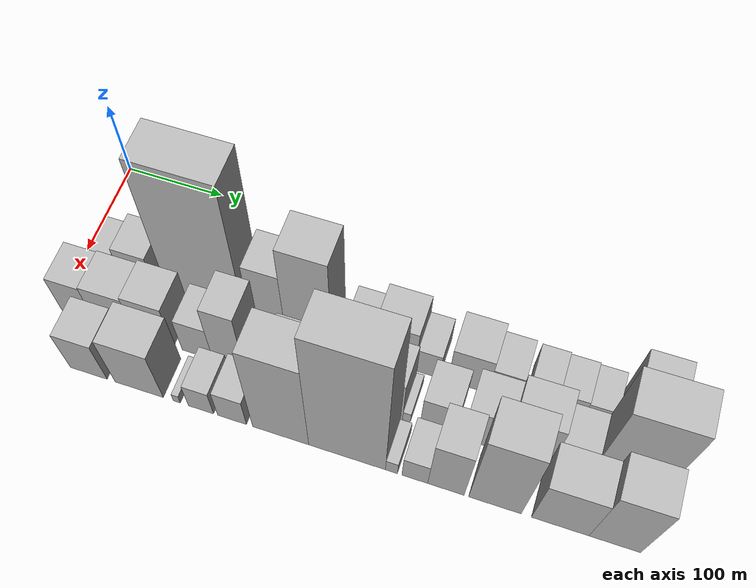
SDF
<sdf version="1.6">
 <world name="default">
  <model name="building_15">
   <static>1</static>
   <pose>100.0000 30.6435 0 0.000000 0.000000 0.000000</pose>
   <link name="link">
    <pose>0 0 21.00 0 0 0</pose>
    <collision name="collision"><geometry><box><size>40.0000 25.0737 42.0000</size></box></geometry></collision>
    <visual name="visual">
     <cast_shadows>0</cast_shadows>
     <geometry><box><size>40.0000 25.0737 42.0000</size></box></geometry>
     <material>
      <script>
       <uri>model://HANNAS_wall/materials/scripts</uri>
       <uri>model://HANNAS_wall/materials/textures</uri>
       <name>vrc/HANNAS_wall</name>
      </script>
     </material>
    </visual>
   </link>
  </model>
  <model name="building_16">
   <static>1</static>
   <pose>100.0000 64.1118 0 0.000000 0.000000 0.000000</pose>
   <link name="link">
    <pose>0 0 30.00 0 0 0</pose>
    <collision name="collision"><geometry><box><size>40.0000 33.8629 60.0000</size></box></geometry></collision>
    <visual name="visual">
     <cast_shadows>0</cast_shadows>
     <geometry><box><size>40.0000 33.8629 60.0000</size></box></geometry>
     <material>
      <script>
       <uri>model://HANNAS_wall/materials/scripts</uri>
       <uri>model://HANNAS_wall/materials/textures</uri>
       <name>vrc/HANNAS_wall</name>
      </script>
     </material>
    </visual>
   </link>
  </model>
  <model name="building_17">
   <static>1</static>
   <pose>100.0000 85.1269 0 0.000000 0.000000 0.000000</pose>
   <link name="link">
    <pose>0 0 9.00 0 0 0</pose>
    <collision name="collision"><geometry><box><size>40.0000 8.1673 18.0000</size></box></geometry></collision>
    <visual name="visual">
     <cast_shadows>0</cast_shadows>
     <geometry><box><size>40.0000 8.1673 18.0000</size></box></geometry>
     <material>
      <script>
       <uri>model://HANNAS_wall/materials/scripts</uri>
       <uri>model://HANNAS_wall/materials/textures</uri>
       <name>vrc/HANNAS_wall</name>
      </script>
     </material>
    </visual>
   </link>
  </model>
  <model name="building_18">
   <static>1</static>
   <pose>100.0000 133.8508 0 0.000000 0.000000 0.000000</pose>
   <link name="link">
    <pose>0 0 111.00 0 0 0</pose>
    <collision name="collision"><geometry><box><size>40.0000 77.2806 222.0000</size></box></geometry></collision>
    <visual name="visual">
     <cast_shadows>0</cast_shadows>
     <geometry><box><size>40.0000 77.2806 222.0000</size></box></geometry>
     <material>
      <script>
       <uri>model://HANNAS_wall/materials/scripts</uri>
       <uri>model://HANNAS_wall/materials/textures</uri>
       <name>vrc/HANNAS_wall</name>
      </script>
     </material>
    </visual>
   </link>
  </model>
  <model name="building_19">
   <static>1</static>
   <pose>100.0000 195.5853 0 0.000000 0.000000 0.000000</pose>
   <link name="link">
    <pose>0 0 51.00 0 0 0</pose>
    <collision name="collision"><geometry><box><size>40.0000 34.1883 102.0000</size></box></geometry></collision>
    <visual name="visual">
     <cast_shadows>0</cast_shadows>
     <geometry><box><size>40.0000 34.1883 102.0000</size></box></geometry>
     <material>
      <script>
       <uri>model://HANNAS_wall/materials/scripts</uri>
       <uri>model://HANNAS_wall/materials/textures</uri>
       <name>vrc/HANNAS_wall</name>
      </script>
     </material>
    </visual>
   </link>
  </model>
  <model name="building_20">
   <static>1</static>
   <pose>100.0000 235.7019 0 0.000000 0.000000 0.000000</pose>
   <link name="link">
    <pose>0 0 75.00 0 0 0</pose>
    <collision name="collision"><geometry><box><size>40.0000 46.0451 150.0000</size></box></geometry></collision>
    <visual name="visual">
     <cast_shadows>0</cast_shadows>
     <geometry><box><size>40.0000 46.0451 150.0000</size></box></geometry>
     <material>
      <script>
       <uri>model://HANNAS_wall/materials/scripts</uri>
       <uri>model://HANNAS_wall/materials/textures</uri>
       <name>vrc/HANNAS_wall</name>
      </script>
     </material>
    </visual>
   </link>
  </model>
  <model name="building_21">
   <static>1</static>
   <pose>100.0000 262.3611 0 0.000000 0.000000 0.000000</pose>
   <link name="link">
    <pose>0 0 9.00 0 0 0</pose>
    <collision name="collision"><geometry><box><size>40.0000 7.2733 18.0000</size></box></geometry></collision>
    <visual name="visual">
     <cast_shadows>0</cast_shadows>
     <geometry><box><size>40.0000 7.2733 18.0000</size></box></geometry>
     <material>
      <script>
       <uri>model://HANNAS_wall/materials/scripts</uri>
       <uri>model://HANNAS_wall/materials/textures</uri>
       <name>vrc/HANNAS_wall</name>
      </script>
     </material>
    </visual>
   </link>
  </model>
  <model name="building_22">
   <static>1</static>
   <pose>100.0000 286.1482 0 0.000000 0.000000 0.000000</pose>
   <link name="link">
    <pose>0 0 27.00 0 0 0</pose>
    <collision name="collision"><geometry><box><size>40.0000 28.3007 54.0000</size></box></geometry></collision>
    <visual name="visual">
     <cast_shadows>0</cast_shadows>
     <geometry><box><size>40.0000 28.3007 54.0000</size></box></geometry>
     <material>
      <script>
       <uri>model://HANNAS_wall/materials/scripts</uri>
       <uri>model://HANNAS_wall/materials/textures</uri>
       <name>vrc/HANNAS_wall</name>
      </script>
     </material>
    </visual>
   </link>
  </model>
  <model name="building_23">
   <static>1</static>
   <pose>100.0000 320.1502 0 0.000000 0.000000 0.000000</pose>
   <link name="link">
    <pose>0 0 37.50 0 0 0</pose>
    <collision name="collision"><geometry><box><size>40.0000 39.7032 75.0000</size></box></geometry></collision>
    <visual name="visual">
     <cast_shadows>0</cast_shadows>
     <geometry><box><size>40.0000 39.7032 75.0000</size></box></geometry>
     <material>
      <script>
       <uri>model://HANNAS_wall/materials/scripts</uri>
       <uri>model://HANNAS_wall/materials/textures</uri>
       <name>vrc/HANNAS_wall</name>
      </script>
     </material>
    </visual>
   </link>
  </model>
  <model name="building_24">
   <static>1</static>
   <pose>100.0000 351.4448 0 0.000000 0.000000 0.000000</pose>
   <link name="link">
    <pose>0 0 22.50 0 0 0</pose>
    <collision name="collision"><geometry><box><size>40.0000 22.8860 45.0000</size></box></geometry></collision>
    <visual name="visual">
     <cast_shadows>0</cast_shadows>
     <geometry><box><size>40.0000 22.8860 45.0000</size></box></geometry>
     <material>
      <script>
       <uri>model://HANNAS_wall/materials/scripts</uri>
       <uri>model://HANNAS_wall/materials/textures</uri>
       <name>vrc/HANNAS_wall</name>
      </script>
     </material>
    </visual>
   </link>
  </model>
  <model name="building_25">
   <static>1</static>
   <pose>100.0000 389.6621 0 0.000000 0.000000 0.000000</pose>
   <link name="link">
    <pose>0 0 33.00 0 0 0</pose>
    <collision name="collision"><geometry><box><size>40.0000 37.5485 66.0000</size></box></geometry></collision>
    <visual name="visual">
     <cast_shadows>0</cast_shadows>
     <geometry><box><size>40.0000 37.5485 66.0000</size></box></geometry>
     <material>
      <script>
       <uri>model://HANNAS_wall/materials/scripts</uri>
       <uri>model://HANNAS_wall/materials/textures</uri>
       <name>vrc/HANNAS_wall</name>
      </script>
     </material>
    </visual>
   </link>
  </model>
  <model name="building_26">
   <static>1</static>
   <pose>100.0000 422.6355 0 0.000000 0.000000 0.000000</pose>
   <link name="link">
    <pose>0 0 25.50 0 0 0</pose>
    <collision name="collision"><geometry><box><size>40.0000 28.3984 51.0000</size></box></geometry></collision>
    <visual name="visual">
     <cast_shadows>0</cast_shadows>
     <geometry><box><size>40.0000 28.3984 51.0000</size></box></geometry>
     <material>
      <script>
       <uri>model://HANNAS_wall/materials/scripts</uri>
       <uri>model://HANNAS_wall/materials/textures</uri>
       <name>vrc/HANNAS_wall</name>
      </script>
     </material>
    </visual>
   </link>
  </model>
  <model name="building_27">
   <static>1</static>
   <pose>100.0000 454.8215 0 0.000000 0.000000 0.000000</pose>
   <link name="link">
    <pose>0 0 24.00 0 0 0</pose>
    <collision name="collision"><geometry><box><size>40.0000 25.9734 48.0000</size></box></geometry></collision>
    <visual name="visual">
     <cast_shadows>0</cast_shadows>
     <geometry><box><size>40.0000 25.9734 48.0000</size></box></geometry>
     <material>
      <script>
       <uri>model://HANNAS_wall/materials/scripts</uri>
       <uri>model://HANNAS_wall/materials/textures</uri>
       <name>vrc/HANNAS_wall</name>
      </script>
     </material>
    </visual>
   </link>
  </model>
  <model name="building_28">
   <static>1</static>
   <pose>100.0000 481.1460 0 0.000000 0.000000 0.000000</pose>
   <link name="link">
    <pose>0 0 22.50 0 0 0</pose>
    <collision name="collision"><geometry><box><size>40.0000 26.6757 45.0000</size></box></geometry></collision>
    <visual name="visual">
     <cast_shadows>0</cast_shadows>
     <geometry><box><size>40.0000 26.6757 45.0000</size></box></geometry>
     <material>
      <script>
       <uri>model://HANNAS_wall/materials/scripts</uri>
       <uri>model://HANNAS_wall/materials/textures</uri>
       <name>vrc/HANNAS_wall</name>
      </script>
     </material>
    </visual>
   </link>
  </model>
  <model name="building_29">
   <static>1</static>
   <pose>100.0000 507.0829 0 0.000000 0.000000 0.000000</pose>
   <link name="link">
    <pose>0 0 21.00 0 0 0</pose>
    <collision name="collision"><geometry><box><size>40.0000 25.1980 42.0000</size></box></geometry></collision>
    <visual name="visual">
     <cast_shadows>0</cast_shadows>
     <geometry><box><size>40.0000 25.1980 42.0000</size></box></geometry>
     <material>
      <script>
       <uri>model://HANNAS_wall/materials/scripts</uri>
       <uri>model://HANNAS_wall/materials/textures</uri>
       <name>vrc/HANNAS_wall</name>
      </script>
     </material>
    </visual>
   </link>
  </model>
  <model name="building_30">
   <static>1</static>
   <pose>100.0000 543.4878 0 0.000000 0.000000 0.000000</pose>
   <link name="link">
    <pose>0 0 48.00 0 0 0</pose>
    <collision name="collision"><geometry><box><size>40.0000 37.6117 96.0000</size></box></geometry></collision>
    <visual name="visual">
     <cast_shadows>0</cast_shadows>
     <geometry><box><size>40.0000 37.6117 96.0000</size></box></geometry>
     <material>
      <script>
       <uri>model://HANNAS_wall/materials/scripts</uri>
       <uri>model://HANNAS_wall/materials/textures</uri>
       <name>vrc/HANNAS_wall</name>
      </script>
     </material>
    </visual>
   </link>
  </model>
  <model name="building_45">
   <static>1</static>
   <pose>149.0000 24.3627 0 0.000000 0.000000 0.000000</pose>
   <link name="link">
    <pose>0 0 33.00 0 0 0</pose>
    <collision name="collision"><geometry><box><size>40.0000 33.1915 66.0000</size></box></geometry></collision>
    <visual name="visual">
     <cast_shadows>0</cast_shadows>
     <geometry><box><size>40.0000 33.1915 66.0000</size></box></geometry>
     <material>
      <script>
       <uri>model://HANNAS_wall/materials/scripts</uri>
       <uri>model://HANNAS_wall/materials/textures</uri>
       <name>vrc/HANNAS_wall</name>
      </script>
     </material>
    </visual>
   </link>
  </model>
  <model name="building_46">
   <static>1</static>
   <pose>149.0000 61.5447 0 0.000000 0.000000 0.000000</pose>
   <link name="link">
    <pose>0 0 34.50 0 0 0</pose>
    <collision name="collision"><geometry><box><size>40.0000 41.1725 69.0000</size></box></geometry></collision>
    <visual name="visual">
     <cast_shadows>0</cast_shadows>
     <geometry><box><size>40.0000 41.1725 69.0000</size></box></geometry>
     <material>
      <script>
       <uri>model://HANNAS_wall/materials/scripts</uri>
       <uri>model://HANNAS_wall/materials/textures</uri>
       <name>vrc/HANNAS_wall</name>
      </script>
     </material>
    </visual>
   </link>
  </model>
  <model name="building_47">
   <static>1</static>
   <pose>149.0000 101.4051 0 0.000000 0.000000 0.000000</pose>
   <link name="link">
    <pose>0 0 37.50 0 0 0</pose>
    <collision name="collision"><geometry><box><size>40.0000 38.5483 75.0000</size></box></geometry></collision>
    <visual name="visual">
     <cast_shadows>0</cast_shadows>
     <geometry><box><size>40.0000 38.5483 75.0000</size></box></geometry>
     <material>
      <script>
       <uri>model://HANNAS_wall/materials/scripts</uri>
       <uri>model://HANNAS_wall/materials/textures</uri>
       <name>vrc/HANNAS_wall</name>
      </script>
     </material>
    </visual>
   </link>
  </model>
  <model name="building_48">
   <static>1</static>
   <pose>149.0000 144.9327 0 0.000000 0.000000 0.000000</pose>
   <link name="link">
    <pose>0 0 30.00 0 0 0</pose>
    <collision name="collision"><geometry><box><size>40.0000 30.5068 60.0000</size></box></geometry></collision>
    <visual name="visual">
     <cast_shadows>0</cast_shadows>
     <geometry><box><size>40.0000 30.5068 60.0000</size></box></geometry>
     <material>
      <script>
       <uri>model://HANNAS_wall/materials/scripts</uri>
       <uri>model://HANNAS_wall/materials/textures</uri>
       <name>vrc/HANNAS_wall</name>
      </script>
     </material>
    </visual>
   </link>
  </model>
  <model name="building_49">
   <static>1</static>
   <pose>149.0000 175.6162 0 0.000000 0.000000 0.000000</pose>
   <link name="link">
    <pose>0 0 51.00 0 0 0</pose>
    <collision name="collision"><geometry><box><size>40.0000 30.8602 102.0000</size></box></geometry></collision>
    <visual name="visual">
     <cast_shadows>0</cast_shadows>
     <geometry><box><size>40.0000 30.8602 102.0000</size></box></geometry>
     <material>
      <script>
       <uri>model://HANNAS_wall/materials/scripts</uri>
       <uri>model://HANNAS_wall/materials/textures</uri>
       <name>vrc/HANNAS_wall</name>
      </script>
     </material>
    </visual>
   </link>
  </model>
  <model name="building_50">
   <static>1</static>
   <pose>149.0000 201.4486 0 0.000000 0.000000 0.000000</pose>
   <link name="link">
    <pose>0 0 19.50 0 0 0</pose>
    <collision name="collision"><geometry><box><size>40.0000 20.8047 39.0000</size></box></geometry></collision>
    <visual name="visual">
     <cast_shadows>0</cast_shadows>
     <geometry><box><size>40.0000 20.8047 39.0000</size></box></geometry>
     <material>
      <script>
       <uri>model://HANNAS_wall/materials/scripts</uri>
       <uri>model://HANNAS_wall/materials/textures</uri>
       <name>vrc/HANNAS_wall</name>
      </script>
     </material>
    </visual>
   </link>
  </model>
  <model name="building_51">
   <static>1</static>
   <pose>149.0000 226.4651 0 0.000000 0.000000 0.000000</pose>
   <link name="link">
    <pose>0 0 27.00 0 0 0</pose>
    <collision name="collision"><geometry><box><size>40.0000 29.2283 54.0000</size></box></geometry></collision>
    <visual name="visual">
     <cast_shadows>0</cast_shadows>
     <geometry><box><size>40.0000 29.2283 54.0000</size></box></geometry>
     <material>
      <script>
       <uri>model://HANNAS_wall/materials/scripts</uri>
       <uri>model://HANNAS_wall/materials/textures</uri>
       <name>vrc/HANNAS_wall</name>
      </script>
     </material>
    </visual>
   </link>
  </model>
  <model name="building_52">
   <static>1</static>
   <pose>149.0000 244.7318 0 0.000000 0.000000 0.000000</pose>
   <link name="link">
    <pose>0 0 7.50 0 0 0</pose>
    <collision name="collision"><geometry><box><size>40.0000 7.3051 15.0000</size></box></geometry></collision>
    <visual name="visual">
     <cast_shadows>0</cast_shadows>
     <geometry><box><size>40.0000 7.3051 15.0000</size></box></geometry>
     <material>
      <script>
       <uri>model://HANNAS_wall/materials/scripts</uri>
       <uri>model://HANNAS_wall/materials/textures</uri>
       <name>vrc/HANNAS_wall</name>
      </script>
     </material>
    </visual>
   </link>
  </model>
  <model name="building_53">
   <static>1</static>
   <pose>149.0000 259.2331 0 0.000000 0.000000 0.000000</pose>
   <link name="link">
    <pose>0 0 13.50 0 0 0</pose>
    <collision name="collision"><geometry><box><size>40.0000 11.6976 27.0000</size></box></geometry></collision>
    <visual name="visual">
     <cast_shadows>0</cast_shadows>
     <geometry><box><size>40.0000 11.6976 27.0000</size></box></geometry>
     <material>
      <script>
       <uri>model://HANNAS_wall/materials/scripts</uri>
       <uri>model://HANNAS_wall/materials/textures</uri>
       <name>vrc/HANNAS_wall</name>
      </script>
     </material>
    </visual>
   </link>
  </model>
  <model name="building_54">
   <static>1</static>
   <pose>149.0000 268.7684 0 0.000000 0.000000 0.000000</pose>
   <link name="link">
    <pose>0 0 9.00 0 0 0</pose>
    <collision name="collision"><geometry><box><size>40.0000 7.3730 18.0000</size></box></geometry></collision>
    <visual name="visual">
     <cast_shadows>0</cast_shadows>
     <geometry><box><size>40.0000 7.3730 18.0000</size></box></geometry>
     <material>
      <script>
       <uri>model://HANNAS_wall/materials/scripts</uri>
       <uri>model://HANNAS_wall/materials/textures</uri>
       <name>vrc/HANNAS_wall</name>
      </script>
     </material>
    </visual>
   </link>
  </model>
  <model name="building_55">
   <static>1</static>
   <pose>149.0000 286.0225 0 0.000000 0.000000 0.000000</pose>
   <link name="link">
    <pose>0 0 25.50 0 0 0</pose>
    <collision name="collision"><geometry><box><size>40.0000 27.1351 51.0000</size></box></geometry></collision>
    <visual name="visual">
     <cast_shadows>0</cast_shadows>
     <geometry><box><size>40.0000 27.1351 51.0000</size></box></geometry>
     <material>
      <script>
       <uri>model://HANNAS_wall/materials/scripts</uri>
       <uri>model://HANNAS_wall/materials/textures</uri>
       <name>vrc/HANNAS_wall</name>
      </script>
     </material>
    </visual>
   </link>
  </model>
  <model name="building_56">
   <static>1</static>
   <pose>149.0000 321.3206 0 0.000000 0.000000 0.000000</pose>
   <link name="link">
    <pose>0 0 37.50 0 0 0</pose>
    <collision name="collision"><geometry><box><size>40.0000 43.4610 75.0000</size></box></geometry></collision>
    <visual name="visual">
     <cast_shadows>0</cast_shadows>
     <geometry><box><size>40.0000 43.4610 75.0000</size></box></geometry>
     <material>
      <script>
       <uri>model://HANNAS_wall/materials/scripts</uri>
       <uri>model://HANNAS_wall/materials/textures</uri>
       <name>vrc/HANNAS_wall</name>
      </script>
     </material>
    </visual>
   </link>
  </model>
  <model name="building_57">
   <static>1</static>
   <pose>149.0000 346.7333 0 0.000000 0.000000 0.000000</pose>
   <link name="link">
    <pose>0 0 9.00 0 0 0</pose>
    <collision name="collision"><geometry><box><size>40.0000 7.3644 18.0000</size></box></geometry></collision>
    <visual name="visual">
     <cast_shadows>0</cast_shadows>
     <geometry><box><size>40.0000 7.3644 18.0000</size></box></geometry>
     <material>
      <script>
       <uri>model://HANNAS_wall/materials/scripts</uri>
       <uri>model://HANNAS_wall/materials/textures</uri>
       <name>vrc/HANNAS_wall</name>
      </script>
     </material>
    </visual>
   </link>
  </model>
  <model name="building_58">
   <static>1</static>
   <pose>149.0000 375.4234 0 0.000000 0.000000 0.000000</pose>
   <link name="link">
    <pose>0 0 30.00 0 0 0</pose>
    <collision name="collision"><geometry><box><size>40.0000 32.0159 60.0000</size></box></geometry></collision>
    <visual name="visual">
     <cast_shadows>0</cast_shadows>
     <geometry><box><size>40.0000 32.0159 60.0000</size></box></geometry>
     <material>
      <script>
       <uri>model://HANNAS_wall/materials/scripts</uri>
       <uri>model://HANNAS_wall/materials/textures</uri>
       <name>vrc/HANNAS_wall</name>
      </script>
     </material>
    </visual>
   </link>
  </model>
  <model name="building_59">
   <static>1</static>
   <pose>149.0000 417.0980 0 0.000000 0.000000 0.000000</pose>
   <link name="link">
    <pose>0 0 34.50 0 0 0</pose>
    <collision name="collision"><geometry><box><size>40.0000 37.3333 69.0000</size></box></geometry></collision>
    <visual name="visual">
     <cast_shadows>0</cast_shadows>
     <geometry><box><size>40.0000 37.3333 69.0000</size></box></geometry>
     <material>
      <script>
       <uri>model://HANNAS_wall/materials/scripts</uri>
       <uri>model://HANNAS_wall/materials/textures</uri>
       <name>vrc/HANNAS_wall</name>
      </script>
     </material>
    </visual>
   </link>
  </model>
  <model name="building_60">
   <static>1</static>
   <pose>149.0000 457.2021 0 0.000000 0.000000 0.000000</pose>
   <link name="link">
    <pose>0 0 42.00 0 0 0</pose>
    <collision name="collision"><geometry><box><size>40.0000 42.8749 84.0000</size></box></geometry></collision>
    <visual name="visual">
     <cast_shadows>0</cast_shadows>
     <geometry><box><size>40.0000 42.8749 84.0000</size></box></geometry>
     <material>
      <script>
       <uri>model://HANNAS_wall/materials/scripts</uri>
       <uri>model://HANNAS_wall/materials/textures</uri>
       <name>vrc/HANNAS_wall</name>
      </script>
     </material>
    </visual>
   </link>
  </model>
  <model name="building_61">
   <static>1</static>
   <pose>149.0000 495.0606 0 0.000000 0.000000 0.000000</pose>
   <link name="link">
    <pose>0 0 28.50 0 0 0</pose>
    <collision name="collision"><geometry><box><size>40.0000 32.8421 57.0000</size></box></geometry></collision>
    <visual name="visual">
     <cast_shadows>0</cast_shadows>
     <geometry><box><size>40.0000 32.8421 57.0000</size></box></geometry>
     <material>
      <script>
       <uri>model://HANNAS_wall/materials/scripts</uri>
       <uri>model://HANNAS_wall/materials/textures</uri>
       <name>vrc/HANNAS_wall</name>
      </script>
     </material>
    </visual>
   </link>
  </model>
  <model name="building_62">
   <static>1</static>
   <pose>149.0000 541.3111 0 0.000000 0.000000 0.000000</pose>
   <link name="link">
    <pose>0 0 79.50 0 0 0</pose>
    <collision name="collision"><geometry><box><size>40.0000 59.6587 159.0000</size></box></geometry></collision>
    <visual name="visual">
     <cast_shadows>0</cast_shadows>
     <geometry><box><size>40.0000 59.6587 159.0000</size></box></geometry>
     <material>
      <script>
       <uri>model://HANNAS_wall/materials/scripts</uri>
       <uri>model://HANNAS_wall/materials/textures</uri>
       <name>vrc/HANNAS_wall</name>
      </script>
     </material>
    </visual>
   </link>
  </model>
  <model name="building_81">
   <static>1</static>
   <pose>198.0000 57.7846 0 0.000000 0.000000 0.000000</pose>
   <link name="link">
    <pose>0 0 34.50 0 0 0</pose>
    <collision name="collision"><geometry><box><size>40.0000 36.8967 69.0000</size></box></geometry></collision>
    <visual name="visual">
     <cast_shadows>0</cast_shadows>
     <geometry><box><size>40.0000 36.8967 69.0000</size></box></geometry>
     <material>
      <script>
       <uri>model://HANNAS_wall/materials/scripts</uri>
       <uri>model://HANNAS_wall/materials/textures</uri>
       <name>vrc/HANNAS_wall</name>
      </script>
     </material>
    </visual>
   </link>
  </model>
  <model name="building_82">
   <static>1</static>
   <pose>198.0000 108.0740 0 0.000000 0.000000 0.000000</pose>
   <link name="link">
    <pose>0 0 43.50 0 0 0</pose>
    <collision name="collision"><geometry><box><size>40.0000 47.6819 87.0000</size></box></geometry></collision>
    <visual name="visual">
     <cast_shadows>0</cast_shadows>
     <geometry><box><size>40.0000 47.6819 87.0000</size></box></geometry>
     <material>
      <script>
       <uri>model://HANNAS_wall/materials/scripts</uri>
       <uri>model://HANNAS_wall/materials/textures</uri>
       <name>vrc/HANNAS_wall</name>
      </script>
     </material>
    </visual>
   </link>
  </model>
  <model name="building_83">
   <static>1</static>
   <pose>198.0000 145.2633 0 0.000000 0.000000 0.000000</pose>
   <link name="link">
    <pose>0 0 7.50 0 0 0</pose>
    <collision name="collision"><geometry><box><size>40.0000 6.6967 15.0000</size></box></geometry></collision>
    <visual name="visual">
     <cast_shadows>0</cast_shadows>
     <geometry><box><size>40.0000 6.6967 15.0000</size></box></geometry>
     <material>
      <script>
       <uri>model://HANNAS_wall/materials/scripts</uri>
       <uri>model://HANNAS_wall/materials/textures</uri>
       <name>vrc/HANNAS_wall</name>
      </script>
     </material>
    </visual>
   </link>
  </model>
  <model name="building_84">
   <static>1</static>
   <pose>198.0000 168.7798 0 0.000000 0.000000 0.000000</pose>
   <link name="link">
    <pose>0 0 22.50 0 0 0</pose>
    <collision name="collision"><geometry><box><size>40.0000 24.3363 45.0000</size></box></geometry></collision>
    <visual name="visual">
     <cast_shadows>0</cast_shadows>
     <geometry><box><size>40.0000 24.3363 45.0000</size></box></geometry>
     <material>
      <script>
       <uri>model://HANNAS_wall/materials/scripts</uri>
       <uri>model://HANNAS_wall/materials/textures</uri>
       <name>vrc/HANNAS_wall</name>
      </script>
     </material>
    </visual>
   </link>
  </model>
  <model name="building_85">
   <static>1</static>
   <pose>198.0000 198.7414 0 0.000000 0.000000 0.000000</pose>
   <link name="link">
    <pose>0 0 25.50 0 0 0</pose>
    <collision name="collision"><geometry><box><size>40.0000 27.5871 51.0000</size></box></geometry></collision>
    <visual name="visual">
     <cast_shadows>0</cast_shadows>
     <geometry><box><size>40.0000 27.5871 51.0000</size></box></geometry>
     <material>
      <script>
       <uri>model://HANNAS_wall/materials/scripts</uri>
       <uri>model://HANNAS_wall/materials/textures</uri>
       <name>vrc/HANNAS_wall</name>
      </script>
     </material>
    </visual>
   </link>
  </model>
  <model name="building_86">
   <static>1</static>
   <pose>198.0000 245.0986 0 0.000000 0.000000 0.000000</pose>
   <link name="link">
    <pose>0 0 81.00 0 0 0</pose>
    <collision name="collision"><geometry><box><size>40.0000 53.1272 162.0000</size></box></geometry></collision>
    <visual name="visual">
     <cast_shadows>0</cast_shadows>
     <geometry><box><size>40.0000 53.1272 162.0000</size></box></geometry>
     <material>
      <script>
       <uri>model://HANNAS_wall/materials/scripts</uri>
       <uri>model://HANNAS_wall/materials/textures</uri>
       <name>vrc/HANNAS_wall</name>
      </script>
     </material>
    </visual>
   </link>
  </model>
  <model name="building_87">
   <static>1</static>
   <pose>198.0000 307.3091 0 0.000000 0.000000 0.000000</pose>
   <link name="link">
    <pose>0 0 112.50 0 0 0</pose>
    <collision name="collision"><geometry><box><size>40.0000 71.2938 225.0000</size></box></geometry></collision>
    <visual name="visual">
     <cast_shadows>0</cast_shadows>
     <geometry><box><size>40.0000 71.2938 225.0000</size></box></geometry>
     <material>
      <script>
       <uri>model://HANNAS_wall/materials/scripts</uri>
       <uri>model://HANNAS_wall/materials/textures</uri>
       <name>vrc/HANNAS_wall</name>
      </script>
     </material>
    </visual>
   </link>
  </model>
  <model name="building_88">
   <static>1</static>
   <pose>198.0000 348.4374 0 0.000000 0.000000 0.000000</pose>
   <link name="link">
    <pose>0 0 12.00 0 0 0</pose>
    <collision name="collision"><geometry><box><size>40.0000 10.9628 24.0000</size></box></geometry></collision>
    <visual name="visual">
     <cast_shadows>0</cast_shadows>
     <geometry><box><size>40.0000 10.9628 24.0000</size></box></geometry>
     <material>
      <script>
       <uri>model://HANNAS_wall/materials/scripts</uri>
       <uri>model://HANNAS_wall/materials/textures</uri>
       <name>vrc/HANNAS_wall</name>
      </script>
     </material>
    </visual>
   </link>
  </model>
  <model name="building_89">
   <static>1</static>
   <pose>198.0000 369.6764 0 0.000000 0.000000 0.000000</pose>
   <link name="link">
    <pose>0 0 21.00 0 0 0</pose>
    <collision name="collision"><geometry><box><size>40.0000 23.5152 42.0000</size></box></geometry></collision>
    <visual name="visual">
     <cast_shadows>0</cast_shadows>
     <geometry><box><size>40.0000 23.5152 42.0000</size></box></geometry>
     <material>
      <script>
       <uri>model://HANNAS_wall/materials/scripts</uri>
       <uri>model://HANNAS_wall/materials/textures</uri>
       <name>vrc/HANNAS_wall</name>
      </script>
     </material>
    </visual>
   </link>
  </model>
  <model name="building_90">
   <static>1</static>
   <pose>198.0000 397.8449 0 0.000000 0.000000 0.000000</pose>
   <link name="link">
    <pose>0 0 48.00 0 0 0</pose>
    <collision name="collision"><geometry><box><size>40.0000 32.8218 96.0000</size></box></geometry></collision>
    <visual name="visual">
     <cast_shadows>0</cast_shadows>
     <geometry><box><size>40.0000 32.8218 96.0000</size></box></geometry>
     <material>
      <script>
       <uri>model://HANNAS_wall/materials/scripts</uri>
       <uri>model://HANNAS_wall/materials/textures</uri>
       <name>vrc/HANNAS_wall</name>
      </script>
     </material>
    </visual>
   </link>
  </model>
  <model name="building_91">
   <static>1</static>
   <pose>198.0000 441.6540 0 0.000000 0.000000 0.000000</pose>
   <link name="link">
    <pose>0 0 70.50 0 0 0</pose>
    <collision name="collision"><geometry><box><size>40.0000 46.7965 141.0000</size></box></geometry></collision>
    <visual name="visual">
     <cast_shadows>0</cast_shadows>
     <geometry><box><size>40.0000 46.7965 141.0000</size></box></geometry>
     <material>
      <script>
       <uri>model://HANNAS_wall/materials/scripts</uri>
       <uri>model://HANNAS_wall/materials/textures</uri>
       <name>vrc/HANNAS_wall</name>
      </script>
     </material>
    </visual>
   </link>
  </model>
  <model name="building_92">
   <static>1</static>
   <pose>198.0000 499.1770 0 0.000000 0.000000 0.000000</pose>
   <link name="link">
    <pose>0 0 43.50 0 0 0</pose>
    <collision name="collision"><geometry><box><size>40.0000 50.2494 87.0000</size></box></geometry></collision>
    <visual name="visual">
     <cast_shadows>0</cast_shadows>
     <geometry><box><size>40.0000 50.2494 87.0000</size></box></geometry>
     <material>
      <script>
       <uri>model://HANNAS_wall/materials/scripts</uri>
       <uri>model://HANNAS_wall/materials/textures</uri>
       <name>vrc/HANNAS_wall</name>
      </script>
     </material>
    </visual>
   </link>
  </model>
  <model name="building_93">
   <static>1</static>
   <pose>198.0000 546.4420 0 0.000000 0.000000 0.000000</pose>
   <link name="link">
    <pose>0 0 55.50 0 0 0</pose>
    <collision name="collision"><geometry><box><size>40.0000 44.2806 111.0000</size></box></geometry></collision>
    <visual name="visual">
     <cast_shadows>0</cast_shadows>
     <geometry><box><size>40.0000 44.2806 111.0000</size></box></geometry>
     <material>
      <script>
       <uri>model://HANNAS_wall/materials/scripts</uri>
       <uri>model://HANNAS_wall/materials/textures</uri>
       <name>vrc/HANNAS_wall</name>
      </script>
     </material>
    </visual>
   </link>
  </model>
 </world>
</sdf>
